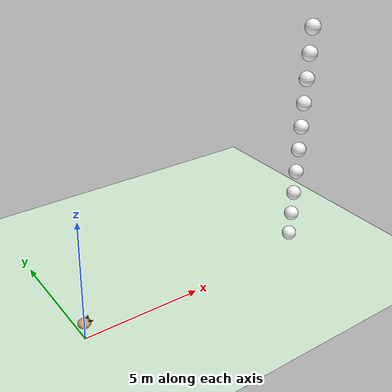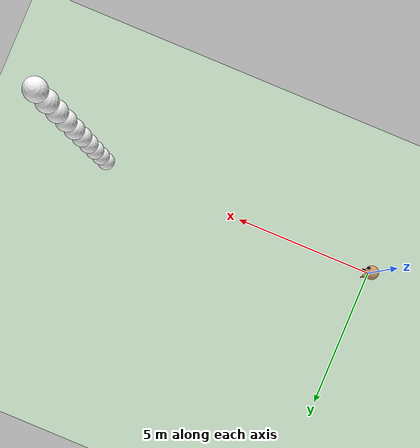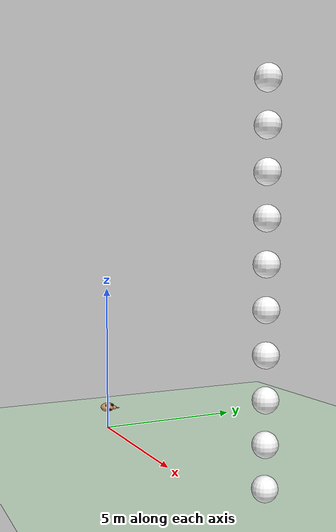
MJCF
<mujoco model="ant">
  <compiler angle="degree" coordinate="local" inertiafromgeom="true"/>
  <option integrator="RK4" timestep="0.01"/>

  <visual>
    <quality shadowsize='8192'/>
    <map znear='0.001'/>
  </visual>

  <default>
    <joint armature="1" damping="1" limited="true"/>
    <geom conaffinity="0" condim="3" density="5.0" friction="1 0.5 0.5" margin="0.01" rgba="0.8 0.6 0.4 1"/>
  </default>

  <asset>
    <texture builtin="gradient" height="100" rgb1="1 1 1" rgb2="0 0 0" type="skybox" width="100"/>
    <texture builtin="flat" height="1278" mark="cross" markrgb="1 1 1" name="texgeom" random="0.01" rgb1="0.8 0.6 0.4" rgb2="0.8 0.6 0.4" type="cube" width="127"/>
    <texture builtin="checker" height="100" name="texplane" rgb1="0 0 0" rgb2="0.8 0.8 0.8" type="2d" width="100"/>
    <texture name="foodtexture" type="2d" file="food_texture.png"/>
    <material name="foodmaterial" reflectance="0.5" shininess="1" specular="0.2" texture="foodtexture"/>
    <material name="MatPlane" reflectance="0.5" shininess="1" specular="1" texrepeat="60 60" texture="texplane"/>
    <material name="geom" texture="texgeom" texuniform="true"/>
  </asset>

  <worldbody>
    <light cutoff="100" diffuse="1 1 1" dir="-0 0 -1.3" directional="true" exponent="1" pos="0 0 1.3" specular=".1 .1 .1"/>
    <geom conaffinity="1" condim="3" material="MatPlane" name="floor" pos="0 0 0" rgba="0.8 0.9 0.8 1" size="40 40 40" type="plane"/>

    <body name="food_body_1" pos="10.0 0.0 1.">
      <geom rgba="1. 1. 1. 1" name="food_geom_1" type="sphere" size="0.3 0.3 0.3" density='25' contype="1" material="foodmaterial" conaffinity="1"/>
      <joint name="food_free_1" type="free" armature='0' damping="0" limited="false" frictionloss="0.2" />
    </body>

    <body name="food_body_2" pos="10.0 0.0 2.">
      <geom rgba="1. 1. 1. 1" name="food_geom_2" type="sphere" size="0.3 0.3 0.3" density='25' contype="1" material="foodmaterial" conaffinity="1"/>
      <joint name="food_free_2" type="free" armature='0' damping="0" limited="false" frictionloss="0.2" />
    </body>

    <body name="food_body_3" pos="10.0 0.0 3.">
      <geom rgba="1. 1. 1. 1" name="food_geom_3" type="sphere" size="0.3 0.3 0.3" density='25' contype="1" material="foodmaterial" conaffinity="1"/>
      <joint name="food_free_3" type="free" armature='0' damping="0" limited="false" frictionloss="0.2" />
    </body>

    <body name="food_body_4" pos="10.0 0.0 4.">
      <geom rgba="1. 1. 1. 1" name="food_geom_4" type="sphere" size="0.3 0.3 0.3" density='25' contype="1" material="foodmaterial" conaffinity="1"/>
      <joint name="food_free_4" type="free" armature='0' damping="0" limited="false" frictionloss="0.2" />
    </body>

    <body name="food_body_5" pos="10.0 0.0 5.">
      <geom rgba="1. 1. 1. 1" name="food_geom_5" type="sphere" size="0.3 0.3 0.3" density='25' contype="1" material="foodmaterial" conaffinity="1"/>
      <joint name="food_free_5" type="free" armature='0' damping="0" limited="false" frictionloss="0.2" />
    </body>

    <body name="food_body_6" pos="10.0 0.0 6.">
      <geom rgba="1. 1. 1. 1" name="food_geom_6" type="sphere" size="0.3 0.3 0.3" density='25' contype="1" material="foodmaterial" conaffinity="1"/>
      <joint name="food_free_6" type="free" armature='0' damping="0" limited="false" frictionloss="0.2" />
    </body>

    <body name="food_body_7" pos="10.0 0.0 7.">
      <geom rgba="1. 1. 1. 1" name="food_geom_7" type="sphere" size="0.3 0.3 0.3" density='25' contype="1" material="foodmaterial" conaffinity="1"/>
      <joint name="food_free_7" type="free" armature='0' damping="0" limited="false" frictionloss="0.2" />
    </body>

    <body name="food_body_8" pos="10.0 0.0 8.">
      <geom rgba="1. 1. 1. 1" name="food_geom_8" type="sphere" size="0.3 0.3 0.3" density='25' contype="1" material="foodmaterial" conaffinity="1"/>
      <joint name="food_free_8" type="free" armature='0' damping="0" limited="false" frictionloss="0.2" />
    </body>

    <body name="food_body_9" pos="10.0 0.0 9.">
      <geom rgba="1. 1. 1. 1" name="food_geom_9" type="sphere" size="0.3 0.3 0.3" density='25' contype="1" material="foodmaterial" conaffinity="1"/>
      <joint name="food_free_9" type="free" armature='0' damping="0" limited="false" frictionloss="0.2" />
    </body>

    <body name="food_body_10" pos="10.0 0.0 10.">
      <geom rgba="1. 1. 1. 1" name="food_geom_10" type="sphere" size="0.3 0.3 0.3" density='25' contype="1" material="foodmaterial" conaffinity="1"/>
      <joint name="food_free_10" type="free" armature='0' damping="0" limited="false" frictionloss="0.2" />
    </body>

    <body name="torso" pos="0 0 0.75">
      <geom fromto="0.0 0.0 0.0  0.34 0.0 -0.05" name="beak" size="0.02" type="capsule" rgba="0.6 0.0 0.0 1"/>

      <camera name="right_view" mode="fixed" pos="0.2 -0.1 0.1" xyaxes="0 -1 0 0 0 1" fovy="120"  />
      <geom pos="0.18 -0.1 0.1" name="gviewR" size="0.05" type="sphere" rgba="0.0 0.0 0.0 1"/>
      <geom pos="0.15 -0.1 0.1" name="gviewR1" size="0.04" type="sphere" rgba="0.0 0.0 0.0 1"/>
      <geom pos="0.13 -0.1 0.1" name="gviewR2" size="0.03" type="sphere" rgba="0.0 0.0 0.0 1"/>
      <camera name="left_view" mode="fixed" pos="0.2 +0.1 0.1" xyaxes="0 -1 0 0 0 1" fovy="120"  />
      <geom pos="0.18 +0.1 0.1" name="gviewL" size="0.05" type="sphere" rgba="0.0 0.0 0.0 1"/>
      <geom pos="0.15 +0.1 0.1" name="gviewL1" size="0.04" type="sphere" rgba="0.0 0.0 0.0 1"/>
      <geom pos="0.13 +0.1 0.1" name="gviewL2" size="0.03" type="sphere" rgba="0.0 0.0 0.0 1"/>

      <camera name="top_view" mode="trackcom" pos="0 0 4" xyaxes="0 -1 0 1 0 0"/>

      <geom name="torso_geom" pos="0 0 0" size="0.25 0.25 0.15" type="ellipsoid"/>
      <site name="imu" />

      <joint armature="0" damping="0" limited="false" margin="0.01" name="root" pos="0 0 0" type="free"/>
      <body name="front_left_leg" pos="0 0 0">
        <geom fromto="0 0 0 0.2 0.2 0.0" name="aux_1a_geom" size="0.060" type="capsule"/>
        <body name="aux_1a" pos="0.2 0.2 0">
          <joint axis="0 0 1" name="hip_1a" pos="0.0 0.0 0.0" range="-0.4 0.4" type="hinge"/>
          <geom fromto="0 0 0 0.1 0.1 0.0" name="aux_1b_geom" size="0.02" type="capsule"/>
        </body>
      </body>

    </body>

  </worldbody>
  <actuator>
    <motor ctrllimited="true" ctrlrange="-1.0 1.0" joint="hip_1a" gear="50"/>
  </actuator>

  <sensor>
    <jointpos joint="hip_1a" />

    <jointvel joint="hip_1a" />
    <gyro name="gyro" site="imu" />
    <accelerometer name="accelerometer" site="imu" />
    <magnetometer name="magnetometer" site="imu" />
  </sensor>

</mujoco>
